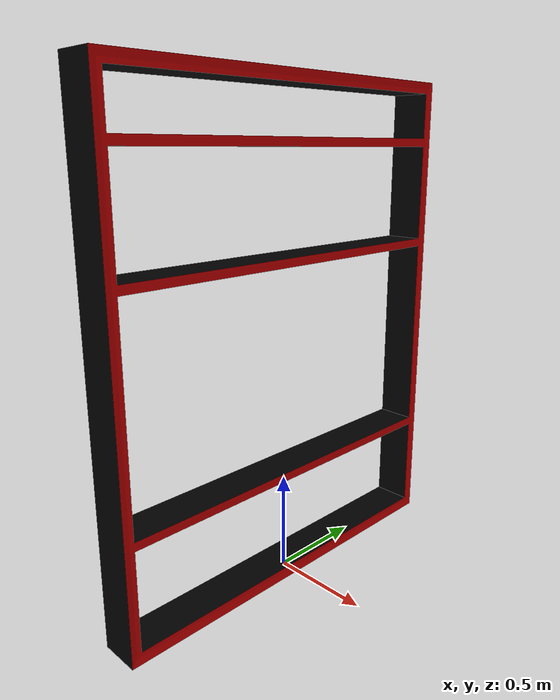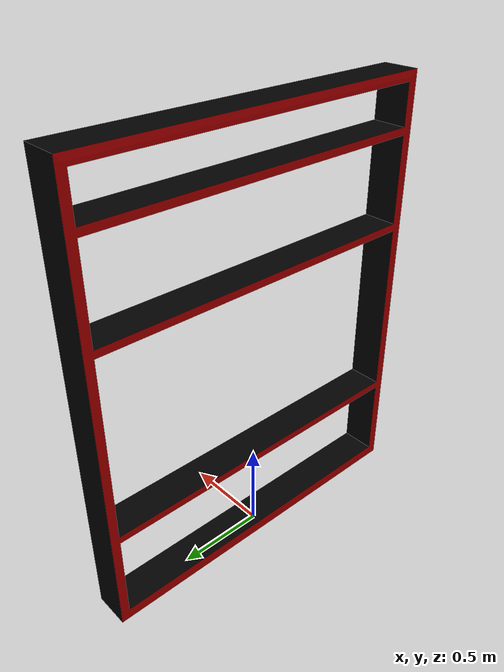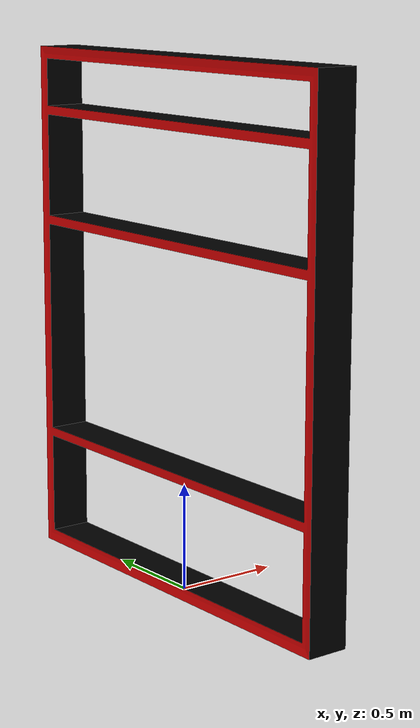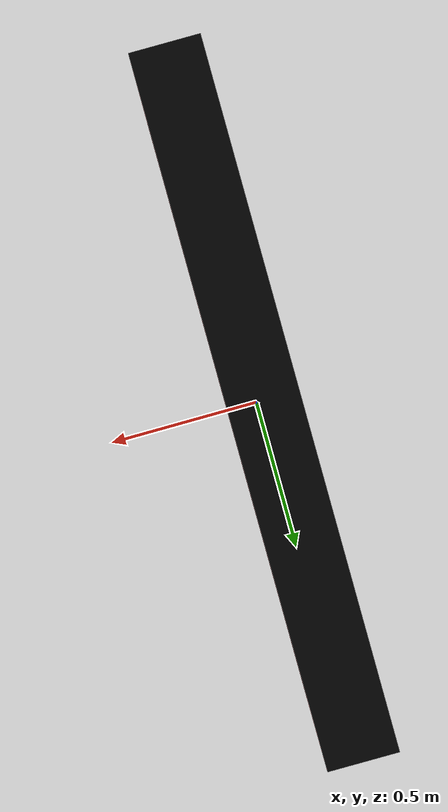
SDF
<?xml version="1.0"?>
<sdf version="1.6">
  <model name="task_2_gate">
    <pose>0 0 0 0 0 0</pose>
    <static>true</static>
    <link name="link">

      <!-- Visualización del modelo -->
      <visual name="visual">
        <geometry>
          <mesh>
            <uri>model://task_2_gate/meshes/task_2_gate.dae</uri>
            <scale>1 1 1</scale>
          </mesh>
        </geometry>
      </visual>

      <!-- Colisión usando el mismo modelo DAE -->
      <collision name="collision">
        <geometry>
          <mesh>
            <uri>model://task_2_gate/meshes/task_2_gate.dae</uri>
            <scale>1 1 1</scale>
          </mesh>
        </geometry>
      </collision>

    </link>
  </model>
</sdf>
